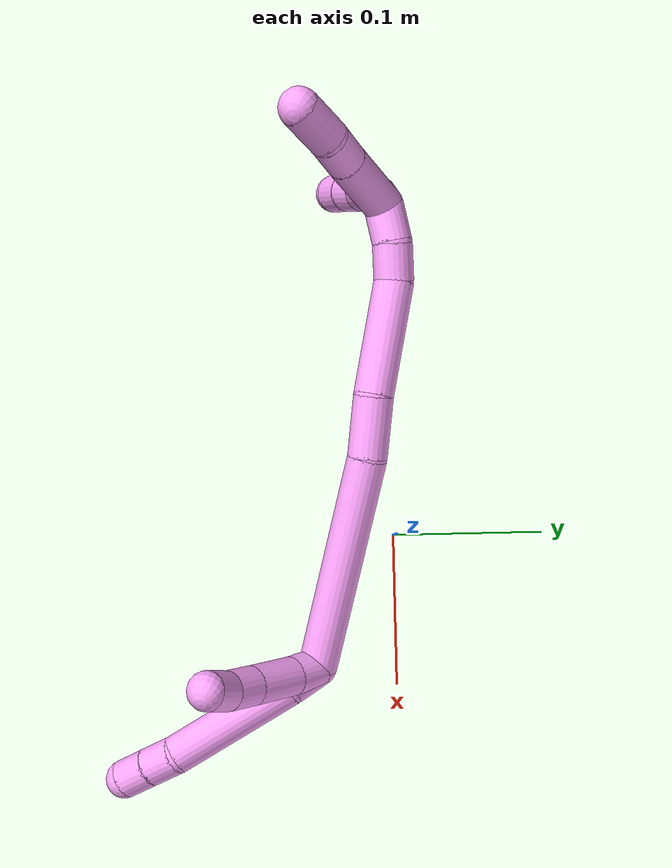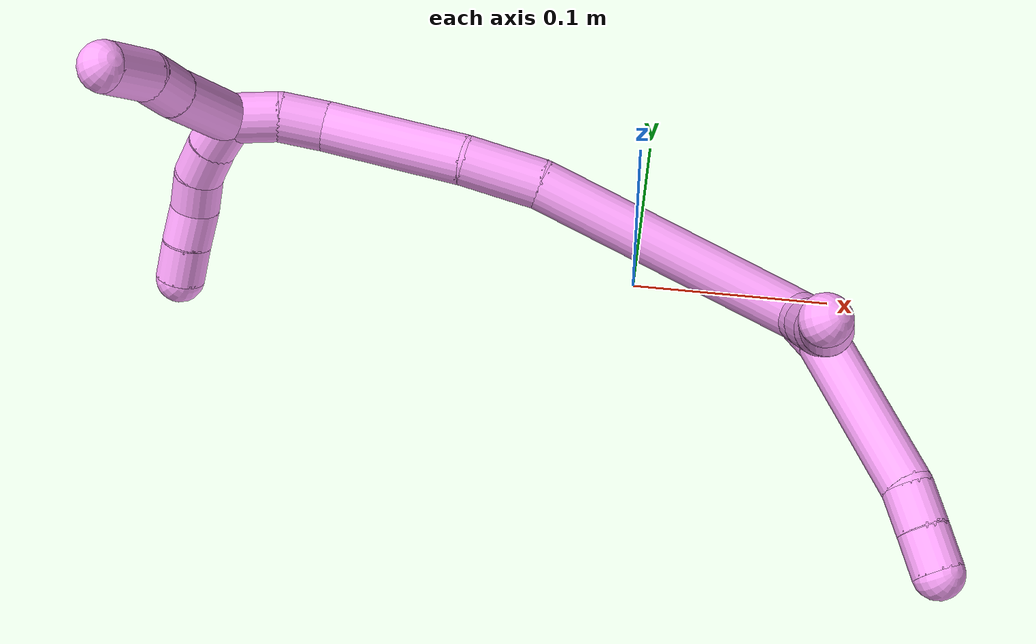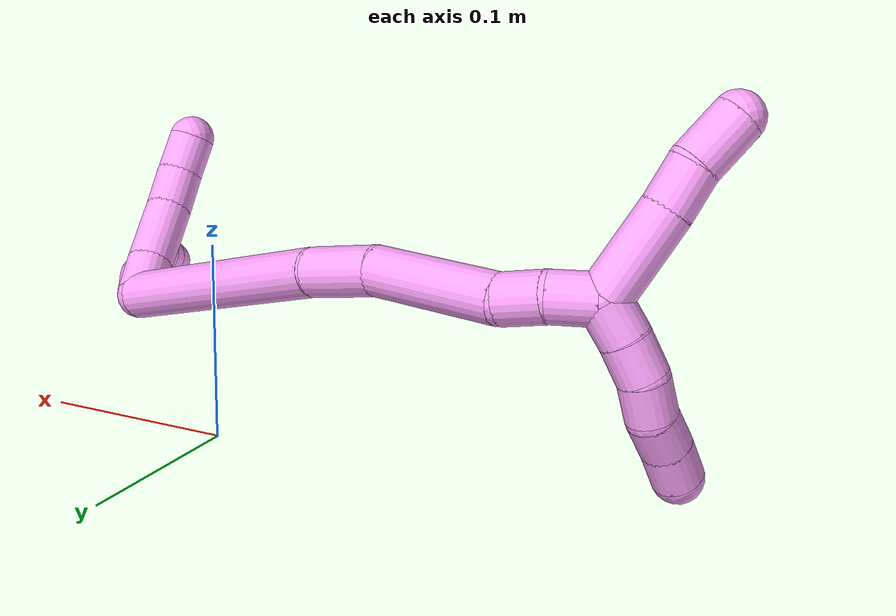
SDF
<sdf version="1.7">
 <world name="default">
  <model name="4">
   <static>0</static>
   <link name="4">
    <collision name="collision-cylinder-e_1_2_8">
     <pose>-0.000594 -0.007827 0.007557 0.802934 -0.054547 -0.023161</pose>
     <geometry><cylinder><radius>0.0125</radius><length>0.021793</length></cylinder></geometry>
     <surface>
      <friction><ode><mu>1.16</mu><mu2>1.16</mu2><slip1>0</slip1><slip2>0</slip2></ode></friction>
      <contact><ode><kp>1e+06</kp><kd>1</kd><max_vel>0</max_vel><min_depth>0.001</min_depth></ode></contact>
     </surface>
    </collision>
    <visual name="visual-cylinder-e_1_2_8">
     <pose>-0.000594 -0.007827 0.007557 0.802934 -0.054547 -0.023161</pose>
     <geometry><cylinder><radius>0.0125</radius><length>0.021793</length></cylinder></geometry>
     <material><ambient>1 0.65098 0.996078 1</ambient></material>
    </visual>
    <collision name="collision-cylinder-e_2_8_9">
     <pose>0.000598 -0.053937 0.034865 1.0945 0.04145 0.025259</pose>
     <geometry><cylinder><radius>0.0125</radius><length>0.086229</length></cylinder></geometry>
     <surface>
      <friction><ode><mu>1.16</mu><mu2>1.16</mu2><slip1>0</slip1><slip2>0</slip2></ode></friction>
      <contact><ode><kp>1e+06</kp><kd>1</kd><max_vel>0</max_vel><min_depth>0.001</min_depth></ode></contact>
     </surface>
    </collision>
    <visual name="visual-cylinder-e_2_8_9">
     <pose>0.000598 -0.053937 0.034865 1.0945 0.04145 0.025259</pose>
     <geometry><cylinder><radius>0.0125</radius><length>0.086229</length></cylinder></geometry>
     <material><ambient>1 0.65098 0.996078 1</ambient></material>
    </visual>
    <collision name="collision-cylinder-e_3_9_10">
     <pose>0.003231 -0.102458 0.056814 1.3593 0.080598 0.065142</pose>
     <geometry><cylinder><radius>0.0125</radius><length>0.02101</length></cylinder></geometry>
     <surface>
      <friction><ode><mu>1.16</mu><mu2>1.16</mu2><slip1>0</slip1><slip2>0</slip2></ode></friction>
      <contact><ode><kp>1e+06</kp><kd>1</kd><max_vel>0</max_vel><min_depth>0.001</min_depth></ode></contact>
     </surface>
    </collision>
    <visual name="visual-cylinder-e_3_9_10">
     <pose>0.003231 -0.102458 0.056814 1.3593 0.080598 0.065142</pose>
     <geometry><cylinder><radius>0.0125</radius><length>0.02101</length></cylinder></geometry>
     <material><ambient>1 0.65098 0.996078 1</ambient></material>
    </visual>
    <collision name="collision-cylinder-e_4_10_6">
     <pose>0.005185 -0.122968 0.06079 1.39942 0.105919 0.089187</pose>
     <geometry><cylinder><radius>0.0125</radius><length>0.020968</length></cylinder></geometry>
     <surface>
      <friction><ode><mu>1.16</mu><mu2>1.16</mu2><slip1>0</slip1><slip2>0</slip2></ode></friction>
      <contact><ode><kp>1e+06</kp><kd>1</kd><max_vel>0</max_vel><min_depth>0.001</min_depth></ode></contact>
     </surface>
    </collision>
    <visual name="visual-cylinder-e_4_10_6">
     <pose>0.005185 -0.122968 0.06079 1.39942 0.105919 0.089187</pose>
     <geometry><cylinder><radius>0.0125</radius><length>0.020968</length></cylinder></geometry>
     <material><ambient>1 0.65098 0.996078 1</ambient></material>
    </visual>
    <collision name="collision-cylinder-e_1_2_11">
     <pose>-0.005018 -0.00376 0.008843 0.401977 -0.48124 -0.099902</pose>
     <geometry><cylinder><radius>0.0125</radius><length>0.021681</length></cylinder></geometry>
     <surface>
      <friction><ode><mu>1.16</mu><mu2>1.16</mu2><slip1>0</slip1><slip2>0</slip2></ode></friction>
      <contact><ode><kp>1e+06</kp><kd>1</kd><max_vel>0</max_vel><min_depth>0.001</min_depth></ode></contact>
     </surface>
    </collision>
    <visual name="visual-cylinder-e_1_2_11">
     <pose>-0.005018 -0.00376 0.008843 0.401977 -0.48124 -0.099902</pose>
     <geometry><cylinder><radius>0.0125</radius><length>0.021681</length></cylinder></geometry>
     <material><ambient>1 0.65098 0.996078 1</ambient></material>
    </visual>
    <collision name="collision-cylinder-e_2_11_12">
     <pose>-0.01955 -0.011994 0.031384 0.315792 -0.583572 -0.095574</pose>
     <geometry><cylinder><radius>0.0125</radius><length>0.034535</length></cylinder></geometry>
     <surface>
      <friction><ode><mu>1.16</mu><mu2>1.16</mu2><slip1>0</slip1><slip2>0</slip2></ode></friction>
      <contact><ode><kp>1e+06</kp><kd>1</kd><max_vel>0</max_vel><min_depth>0.001</min_depth></ode></contact>
     </surface>
    </collision>
    <visual name="visual-cylinder-e_2_11_12">
     <pose>-0.01955 -0.011994 0.031384 0.315792 -0.583572 -0.095574</pose>
     <geometry><cylinder><radius>0.0125</radius><length>0.034535</length></cylinder></geometry>
     <material><ambient>1 0.65098 0.996078 1</ambient></material>
    </visual>
    <collision name="collision-cylinder-e_3_12_13">
     <pose>-0.035538 -0.018376 0.054152 0.207184 -0.609575 -0.065389</pose>
     <geometry><cylinder><radius>0.0125</radius><length>0.022612</length></cylinder></geometry>
     <surface>
      <friction><ode><mu>1.16</mu><mu2>1.16</mu2><slip1>0</slip1><slip2>0</slip2></ode></friction>
      <contact><ode><kp>1e+06</kp><kd>1</kd><max_vel>0</max_vel><min_depth>0.001</min_depth></ode></contact>
     </surface>
    </collision>
    <visual name="visual-cylinder-e_3_12_13">
     <pose>-0.035538 -0.018376 0.054152 0.207184 -0.609575 -0.065389</pose>
     <geometry><cylinder><radius>0.0125</radius><length>0.022612</length></cylinder></geometry>
     <material><ambient>1 0.65098 0.996078 1</ambient></material>
    </visual>
    <collision name="collision-cylinder-e_4_13_5">
     <pose>-0.04915 -0.019944 0.071032 -0.04341 -0.74024 0.016846</pose>
     <geometry><cylinder><radius>0.0125</radius><length>0.021172</length></cylinder></geometry>
     <surface>
      <friction><ode><mu>1.16</mu><mu2>1.16</mu2><slip1>0</slip1><slip2>0</slip2></ode></friction>
      <contact><ode><kp>1e+06</kp><kd>1</kd><max_vel>0</max_vel><min_depth>0.001</min_depth></ode></contact>
     </surface>
    </collision>
    <visual name="visual-cylinder-e_4_13_5">
     <pose>-0.04915 -0.019944 0.071032 -0.04341 -0.74024 0.016846</pose>
     <geometry><cylinder><radius>0.0125</radius><length>0.021172</length></cylinder></geometry>
     <material><ambient>1 0.65098 0.996078 1</ambient></material>
    </visual>
    <collision name="collision-cylinder-e_1_2_14">
     <pose>-0.051424 0.0384 -0.029172 -2.22047 -0.817494 1.4354</pose>
     <geometry><cylinder><radius>0.0125</radius><length>0.140996</length></cylinder></geometry>
     <surface>
      <friction><ode><mu>1.16</mu><mu2>1.16</mu2><slip1>0</slip1><slip2>0</slip2></ode></friction>
      <contact><ode><kp>1e+06</kp><kd>1</kd><max_vel>0</max_vel><min_depth>0.001</min_depth></ode></contact>
     </surface>
    </collision>
    <visual name="visual-cylinder-e_1_2_14">
     <pose>-0.051424 0.0384 -0.029172 -2.22047 -0.817494 1.4354</pose>
     <geometry><cylinder><radius>0.0125</radius><length>0.140996</length></cylinder></geometry>
     <material><ambient>1 0.65098 0.996078 1</ambient></material>
    </visual>
    <collision name="collision-cylinder-e_2_14_15">
     <pose>-0.118044 0.084646 -0.06771 -2.4443 -0.893654 1.84359</pose>
     <geometry><cylinder><radius>0.0125</radius><length>0.038999</length></cylinder></geometry>
     <surface>
      <friction><ode><mu>1.16</mu><mu2>1.16</mu2><slip1>0</slip1><slip2>0</slip2></ode></friction>
      <contact><ode><kp>1e+06</kp><kd>1</kd><max_vel>0</max_vel><min_depth>0.001</min_depth></ode></contact>
     </surface>
    </collision>
    <visual name="visual-cylinder-e_2_14_15">
     <pose>-0.118044 0.084646 -0.06771 -2.4443 -0.893654 1.84359</pose>
     <geometry><cylinder><radius>0.0125</radius><length>0.038999</length></cylinder></geometry>
     <material><ambient>1 0.65098 0.996078 1</ambient></material>
    </visual>
    <collision name="collision-cylinder-e_3_15_16">
     <pose>-0.15729 0.106206 -0.100304 -2.60823 -0.728107 1.89755</pose>
     <geometry><cylinder><radius>0.0125</radius><length>0.072276</length></cylinder></geometry>
     <surface>
      <friction><ode><mu>1.16</mu><mu2>1.16</mu2><slip1>0</slip1><slip2>0</slip2></ode></friction>
      <contact><ode><kp>1e+06</kp><kd>1</kd><max_vel>0</max_vel><min_depth>0.001</min_depth></ode></contact>
     </surface>
    </collision>
    <visual name="visual-cylinder-e_3_15_16">
     <pose>-0.15729 0.106206 -0.100304 -2.60823 -0.728107 1.89755</pose>
     <geometry><cylinder><radius>0.0125</radius><length>0.072276</length></cylinder></geometry>
     <material><ambient>1 0.65098 0.996078 1</ambient></material>
    </visual>
    <collision name="collision-cylinder-e_4_16_17">
     <pose>-0.191344 0.123272 -0.128677 -2.56435 -1.02033 2.16594</pose>
     <geometry><cylinder><radius>0.0125</radius><length>0.023479</length></cylinder></geometry>
     <surface>
      <friction><ode><mu>1.16</mu><mu2>1.16</mu2><slip1>0</slip1><slip2>0</slip2></ode></friction>
      <contact><ode><kp>1e+06</kp><kd>1</kd><max_vel>0</max_vel><min_depth>0.001</min_depth></ode></contact>
     </surface>
    </collision>
    <visual name="visual-cylinder-e_4_16_17">
     <pose>-0.191344 0.123272 -0.128677 -2.56435 -1.02033 2.16594</pose>
     <geometry><cylinder><radius>0.0125</radius><length>0.023479</length></cylinder></geometry>
     <material><ambient>1 0.65098 0.996078 1</ambient></material>
    </visual>
    <collision name="collision-cylinder-e_5_17_1">
     <pose>-0.211802 0.127331 -0.139927 -3.02613 -1.03937 2.94025</pose>
     <geometry><cylinder><radius>0.0125</radius><length>0.02425</length></cylinder></geometry>
     <surface>
      <friction><ode><mu>1.16</mu><mu2>1.16</mu2><slip1>0</slip1><slip2>0</slip2></ode></friction>
      <contact><ode><kp>1e+06</kp><kd>1</kd><max_vel>0</max_vel><min_depth>0.001</min_depth></ode></contact>
     </surface>
    </collision>
    <visual name="visual-cylinder-e_5_17_1">
     <pose>-0.211802 0.127331 -0.139927 -3.02613 -1.03937 2.94025</pose>
     <geometry><cylinder><radius>0.0125</radius><length>0.02425</length></cylinder></geometry>
     <material><ambient>1 0.65098 0.996078 1</ambient></material>
    </visual>
    <collision name="collision-cylinder-e_1_1_18">
     <pose>-0.242953 0.129641 -0.134502 -0.138127 -1.05853 0.080879</pose>
     <geometry><cylinder><radius>0.0125</radius><length>0.047493</length></cylinder></geometry>
     <surface>
      <friction><ode><mu>1.16</mu><mu2>1.16</mu2><slip1>0</slip1><slip2>0</slip2></ode></friction>
      <contact><ode><kp>1e+06</kp><kd>1</kd><max_vel>0</max_vel><min_depth>0.001</min_depth></ode></contact>
     </surface>
    </collision>
    <visual name="visual-cylinder-e_1_1_18">
     <pose>-0.242953 0.129641 -0.134502 -0.138127 -1.05853 0.080879</pose>
     <geometry><cylinder><radius>0.0125</radius><length>0.047493</length></cylinder></geometry>
     <material><ambient>1 0.65098 0.996078 1</ambient></material>
    </visual>
    <collision name="collision-cylinder-e_2_18_19">
     <pose>-0.27346 0.132797 -0.116742 -0.244289 -0.991141 0.13252</pose>
     <geometry><cylinder><radius>0.0125</radius><length>0.023448</length></cylinder></geometry>
     <surface>
      <friction><ode><mu>1.16</mu><mu2>1.16</mu2><slip1>0</slip1><slip2>0</slip2></ode></friction>
      <contact><ode><kp>1e+06</kp><kd>1</kd><max_vel>0</max_vel><min_depth>0.001</min_depth></ode></contact>
     </surface>
    </collision>
    <visual name="visual-cylinder-e_2_18_19">
     <pose>-0.27346 0.132797 -0.116742 -0.244289 -0.991141 0.13252</pose>
     <geometry><cylinder><radius>0.0125</radius><length>0.023448</length></cylinder></geometry>
     <material><ambient>1 0.65098 0.996078 1</ambient></material>
    </visual>
    <collision name="collision-cylinder-e_3_19_4">
     <pose>-0.296617 0.133709 -0.104807 0.112051 -1.16468 -0.073831</pose>
     <geometry><cylinder><radius>0.0125</radius><length>0.029059</length></cylinder></geometry>
     <surface>
      <friction><ode><mu>1.16</mu><mu2>1.16</mu2><slip1>0</slip1><slip2>0</slip2></ode></friction>
      <contact><ode><kp>1e+06</kp><kd>1</kd><max_vel>0</max_vel><min_depth>0.001</min_depth></ode></contact>
     </surface>
    </collision>
    <visual name="visual-cylinder-e_3_19_4">
     <pose>-0.296617 0.133709 -0.104807 0.112051 -1.16468 -0.073831</pose>
     <geometry><cylinder><radius>0.0125</radius><length>0.029059</length></cylinder></geometry>
     <material><ambient>1 0.65098 0.996078 1</ambient></material>
    </visual>
    <collision name="collision-cylinder-e_1_1_20">
     <pose>-0.222948 0.12351 -0.154919 2.67038 -0.069386 -0.287152</pose>
     <geometry><cylinder><radius>0.0125</radius><length>0.02</length></cylinder></geometry>
     <surface>
      <friction><ode><mu>1.16</mu><mu2>1.16</mu2><slip1>0</slip1><slip2>0</slip2></ode></friction>
      <contact><ode><kp>1e+06</kp><kd>1</kd><max_vel>0</max_vel><min_depth>0.001</min_depth></ode></contact>
     </surface>
    </collision>
    <visual name="visual-cylinder-e_1_1_20">
     <pose>-0.222948 0.12351 -0.154919 2.67038 -0.069386 -0.287152</pose>
     <geometry><cylinder><radius>0.0125</radius><length>0.02</length></cylinder></geometry>
     <material><ambient>1 0.65098 0.996078 1</ambient></material>
    </visual>
    <collision name="collision-cylinder-e_2_20_21">
     <pose>-0.223554 0.11388 -0.172408 2.60623 0.008727 0.031818</pose>
     <geometry><cylinder><radius>0.0125</radius><length>0.02</length></cylinder></geometry>
     <surface>
      <friction><ode><mu>1.16</mu><mu2>1.16</mu2><slip1>0</slip1><slip2>0</slip2></ode></friction>
      <contact><ode><kp>1e+06</kp><kd>1</kd><max_vel>0</max_vel><min_depth>0.001</min_depth></ode></contact>
     </surface>
    </collision>
    <visual name="visual-cylinder-e_2_20_21">
     <pose>-0.223554 0.11388 -0.172408 2.60623 0.008727 0.031818</pose>
     <geometry><cylinder><radius>0.0125</radius><length>0.02</length></cylinder></geometry>
     <material><ambient>1 0.65098 0.996078 1</ambient></material>
    </visual>
    <collision name="collision-cylinder-e_3_21_22">
     <pose>-0.221468 0.102368 -0.188419 2.42841 0.201273 0.529418</pose>
     <geometry><cylinder><radius>0.0125</radius><length>0.02</length></cylinder></geometry>
     <surface>
      <friction><ode><mu>1.16</mu><mu2>1.16</mu2><slip1>0</slip1><slip2>0</slip2></ode></friction>
      <contact><ode><kp>1e+06</kp><kd>1</kd><max_vel>0</max_vel><min_depth>0.001</min_depth></ode></contact>
     </surface>
    </collision>
    <visual name="visual-cylinder-e_3_21_22">
     <pose>-0.221468 0.102368 -0.188419 2.42841 0.201273 0.529418</pose>
     <geometry><cylinder><radius>0.0125</radius><length>0.02</length></cylinder></geometry>
     <material><ambient>1 0.65098 0.996078 1</ambient></material>
    </visual>
    <collision name="collision-cylinder-e_4_22_23">
     <pose>-0.219511 0.088053 -0.201954 2.23001 -0.004255 -0.00868</pose>
     <geometry><cylinder><radius>0.0125</radius><length>0.02</length></cylinder></geometry>
     <surface>
      <friction><ode><mu>1.16</mu><mu2>1.16</mu2><slip1>0</slip1><slip2>0</slip2></ode></friction>
      <contact><ode><kp>1e+06</kp><kd>1</kd><max_vel>0</max_vel><min_depth>0.001</min_depth></ode></contact>
     </surface>
    </collision>
    <visual name="visual-cylinder-e_4_22_23">
     <pose>-0.219511 0.088053 -0.201954 2.23001 -0.004255 -0.00868</pose>
     <geometry><cylinder><radius>0.0125</radius><length>0.02</length></cylinder></geometry>
     <material><ambient>1 0.65098 0.996078 1</ambient></material>
    </visual>
    <collision name="collision-cylinder-e_5_23_3">
     <pose>-0.218938 0.072465 -0.214449 2.26301 0.06164 0.131026</pose>
     <geometry><cylinder><radius>0.0125</radius><length>0.02</length></cylinder></geometry>
     <surface>
      <friction><ode><mu>1.16</mu><mu2>1.16</mu2><slip1>0</slip1><slip2>0</slip2></ode></friction>
      <contact><ode><kp>1e+06</kp><kd>1</kd><max_vel>0</max_vel><min_depth>0.001</min_depth></ode></contact>
     </surface>
    </collision>
    <visual name="visual-cylinder-e_5_23_3">
     <pose>-0.218938 0.072465 -0.214449 2.26301 0.06164 0.131026</pose>
     <geometry><cylinder><radius>0.0125</radius><length>0.02</length></cylinder></geometry>
     <material><ambient>1 0.65098 0.996078 1</ambient></material>
    </visual>
    <collision name="collision-sphere-3">
     <pose>-0.218322 0.064781 -0.22082 0 -0 0</pose>
     <geometry><sphere><radius>0.0125</radius></sphere></geometry>
     <surface>
      <friction><ode><mu>1.16</mu><mu2>1.16</mu2><slip1>0</slip1><slip2>0</slip2></ode></friction>
      <contact><ode><kp>1e+06</kp><kd>1</kd><max_vel>0</max_vel><min_depth>0.001</min_depth></ode></contact>
     </surface>
    </collision>
    <visual name="visual-sphere-3">
     <pose>-0.218322 0.064781 -0.22082 0 -0 0</pose>
     <geometry><sphere><radius>0.0125</radius></sphere></geometry>
     <material><ambient>1 0.65098 0.996078 1</ambient></material>
    </visual>
    <collision name="collision-sphere-23">
     <pose>-0.219554 0.080149 -0.208079 0 -0 0</pose>
     <geometry><sphere><radius>0.0125</radius></sphere></geometry>
     <surface>
      <friction><ode><mu>1.16</mu><mu2>1.16</mu2><slip1>0</slip1><slip2>0</slip2></ode></friction>
      <contact><ode><kp>1e+06</kp><kd>1</kd><max_vel>0</max_vel><min_depth>0.001</min_depth></ode></contact>
     </surface>
    </collision>
    <visual name="visual-sphere-23">
     <pose>-0.219554 0.080149 -0.208079 0 -0 0</pose>
     <geometry><sphere><radius>0.0125</radius></sphere></geometry>
     <material><ambient>1 0.65098 0.996078 1</ambient></material>
    </visual>
    <collision name="collision-sphere-22">
     <pose>-0.219469 0.095958 -0.195829 0 -0 0</pose>
     <geometry><sphere><radius>0.0125</radius></sphere></geometry>
     <surface>
      <friction><ode><mu>1.16</mu><mu2>1.16</mu2><slip1>0</slip1><slip2>0</slip2></ode></friction>
      <contact><ode><kp>1e+06</kp><kd>1</kd><max_vel>0</max_vel><min_depth>0.001</min_depth></ode></contact>
     </surface>
    </collision>
    <visual name="visual-sphere-22">
     <pose>-0.219469 0.095958 -0.195829 0 -0 0</pose>
     <geometry><sphere><radius>0.0125</radius></sphere></geometry>
     <material><ambient>1 0.65098 0.996078 1</ambient></material>
    </visual>
    <collision name="collision-sphere-21">
     <pose>-0.223467 0.108779 -0.181009 0 -0 0</pose>
     <geometry><sphere><radius>0.0125</radius></sphere></geometry>
     <surface>
      <friction><ode><mu>1.16</mu><mu2>1.16</mu2><slip1>0</slip1><slip2>0</slip2></ode></friction>
      <contact><ode><kp>1e+06</kp><kd>1</kd><max_vel>0</max_vel><min_depth>0.001</min_depth></ode></contact>
     </surface>
    </collision>
    <visual name="visual-sphere-21">
     <pose>-0.223467 0.108779 -0.181009 0 -0 0</pose>
     <geometry><sphere><radius>0.0125</radius></sphere></geometry>
     <material><ambient>1 0.65098 0.996078 1</ambient></material>
    </visual>
    <collision name="collision-sphere-20">
     <pose>-0.223641 0.118981 -0.163808 0 -0 0</pose>
     <geometry><sphere><radius>0.0125</radius></sphere></geometry>
     <surface>
      <friction><ode><mu>1.16</mu><mu2>1.16</mu2><slip1>0</slip1><slip2>0</slip2></ode></friction>
      <contact><ode><kp>1e+06</kp><kd>1</kd><max_vel>0</max_vel><min_depth>0.001</min_depth></ode></contact>
     </surface>
    </collision>
    <visual name="visual-sphere-20">
     <pose>-0.223641 0.118981 -0.163808 0 -0 0</pose>
     <geometry><sphere><radius>0.0125</radius></sphere></geometry>
     <material><ambient>1 0.65098 0.996078 1</ambient></material>
    </visual>
    <collision name="collision-sphere-4">
     <pose>-0.309965 0.133067 -0.099104 0 -0 0</pose>
     <geometry><sphere><radius>0.0125</radius></sphere></geometry>
     <surface>
      <friction><ode><mu>1.16</mu><mu2>1.16</mu2><slip1>0</slip1><slip2>0</slip2></ode></friction>
      <contact><ode><kp>1e+06</kp><kd>1</kd><max_vel>0</max_vel><min_depth>0.001</min_depth></ode></contact>
     </surface>
    </collision>
    <visual name="visual-sphere-4">
     <pose>-0.309965 0.133067 -0.099104 0 -0 0</pose>
     <geometry><sphere><radius>0.0125</radius></sphere></geometry>
     <material><ambient>1 0.65098 0.996078 1</ambient></material>
    </visual>
    <collision name="collision-sphere-11">
     <pose>-0.010036 -0.007519 0.017687 0 -0 0</pose>
     <geometry><sphere><radius>0.0125</radius></sphere></geometry>
     <surface>
      <friction><ode><mu>1.16</mu><mu2>1.16</mu2><slip1>0</slip1><slip2>0</slip2></ode></friction>
      <contact><ode><kp>1e+06</kp><kd>1</kd><max_vel>0</max_vel><min_depth>0.001</min_depth></ode></contact>
     </surface>
    </collision>
    <visual name="visual-sphere-11">
     <pose>-0.010036 -0.007519 0.017687 0 -0 0</pose>
     <geometry><sphere><radius>0.0125</radius></sphere></geometry>
     <material><ambient>1 0.65098 0.996078 1</ambient></material>
    </visual>
    <collision name="collision-sphere-6">
     <pose>0.006293 -0.133241 0.062568 0 -0 0</pose>
     <geometry><sphere><radius>0.0125</radius></sphere></geometry>
     <surface>
      <friction><ode><mu>1.16</mu><mu2>1.16</mu2><slip1>0</slip1><slip2>0</slip2></ode></friction>
      <contact><ode><kp>1e+06</kp><kd>1</kd><max_vel>0</max_vel><min_depth>0.001</min_depth></ode></contact>
     </surface>
    </collision>
    <visual name="visual-sphere-6">
     <pose>0.006293 -0.133241 0.062568 0 -0 0</pose>
     <geometry><sphere><radius>0.0125</radius></sphere></geometry>
     <material><ambient>1 0.65098 0.996078 1</ambient></material>
    </visual>
    <collision name="collision-sphere-10">
     <pose>0.004077 -0.112695 0.059012 0 -0 0</pose>
     <geometry><sphere><radius>0.0125</radius></sphere></geometry>
     <surface>
      <friction><ode><mu>1.16</mu><mu2>1.16</mu2><slip1>0</slip1><slip2>0</slip2></ode></friction>
      <contact><ode><kp>1e+06</kp><kd>1</kd><max_vel>0</max_vel><min_depth>0.001</min_depth></ode></contact>
     </surface>
    </collision>
    <visual name="visual-sphere-10">
     <pose>0.004077 -0.112695 0.059012 0 -0 0</pose>
     <geometry><sphere><radius>0.0125</radius></sphere></geometry>
     <material><ambient>1 0.65098 0.996078 1</ambient></material>
    </visual>
    <collision name="collision-sphere-9">
     <pose>0.002385 -0.09222 0.054616 0 -0 0</pose>
     <geometry><sphere><radius>0.0125</radius></sphere></geometry>
     <surface>
      <friction><ode><mu>1.16</mu><mu2>1.16</mu2><slip1>0</slip1><slip2>0</slip2></ode></friction>
      <contact><ode><kp>1e+06</kp><kd>1</kd><max_vel>0</max_vel><min_depth>0.001</min_depth></ode></contact>
     </surface>
    </collision>
    <visual name="visual-sphere-9">
     <pose>0.002385 -0.09222 0.054616 0 -0 0</pose>
     <geometry><sphere><radius>0.0125</radius></sphere></geometry>
     <material><ambient>1 0.65098 0.996078 1</ambient></material>
    </visual>
    <collision name="collision-sphere-2">
     <geometry><sphere><radius>0.0125</radius></sphere></geometry>
     <surface>
      <friction><ode><mu>1.16</mu><mu2>1.16</mu2><slip1>0</slip1><slip2>0</slip2></ode></friction>
      <contact><ode><kp>1e+06</kp><kd>1</kd><max_vel>0</max_vel><min_depth>0.001</min_depth></ode></contact>
     </surface>
    </collision>
    <visual name="visual-sphere-2">
     <geometry><sphere><radius>0.0125</radius></sphere></geometry>
     <material><ambient>1 0.65098 0.996078 1</ambient></material>
    </visual>
    <collision name="collision-sphere-19">
     <pose>-0.283269 0.13435 -0.110511 0 -0 0</pose>
     <geometry><sphere><radius>0.0125</radius></sphere></geometry>
     <surface>
      <friction><ode><mu>1.16</mu><mu2>1.16</mu2><slip1>0</slip1><slip2>0</slip2></ode></friction>
      <contact><ode><kp>1e+06</kp><kd>1</kd><max_vel>0</max_vel><min_depth>0.001</min_depth></ode></contact>
     </surface>
    </collision>
    <visual name="visual-sphere-19">
     <pose>-0.283269 0.13435 -0.110511 0 -0 0</pose>
     <geometry><sphere><radius>0.0125</radius></sphere></geometry>
     <material><ambient>1 0.65098 0.996078 1</ambient></material>
    </visual>
    <collision name="collision-sphere-8">
     <pose>-0.001188 -0.015654 0.015115 0 -0 0</pose>
     <geometry><sphere><radius>0.0125</radius></sphere></geometry>
     <surface>
      <friction><ode><mu>1.16</mu><mu2>1.16</mu2><slip1>0</slip1><slip2>0</slip2></ode></friction>
      <contact><ode><kp>1e+06</kp><kd>1</kd><max_vel>0</max_vel><min_depth>0.001</min_depth></ode></contact>
     </surface>
    </collision>
    <visual name="visual-sphere-8">
     <pose>-0.001188 -0.015654 0.015115 0 -0 0</pose>
     <geometry><sphere><radius>0.0125</radius></sphere></geometry>
     <material><ambient>1 0.65098 0.996078 1</ambient></material>
    </visual>
    <collision name="collision-sphere-12">
     <pose>-0.029065 -0.01647 0.045081 0 -0 0</pose>
     <geometry><sphere><radius>0.0125</radius></sphere></geometry>
     <surface>
      <friction><ode><mu>1.16</mu><mu2>1.16</mu2><slip1>0</slip1><slip2>0</slip2></ode></friction>
      <contact><ode><kp>1e+06</kp><kd>1</kd><max_vel>0</max_vel><min_depth>0.001</min_depth></ode></contact>
     </surface>
    </collision>
    <visual name="visual-sphere-12">
     <pose>-0.029065 -0.01647 0.045081 0 -0 0</pose>
     <geometry><sphere><radius>0.0125</radius></sphere></geometry>
     <material><ambient>1 0.65098 0.996078 1</ambient></material>
    </visual>
    <collision name="collision-sphere-13">
     <pose>-0.04201 -0.020283 0.063224 0 -0 0</pose>
     <geometry><sphere><radius>0.0125</radius></sphere></geometry>
     <surface>
      <friction><ode><mu>1.16</mu><mu2>1.16</mu2><slip1>0</slip1><slip2>0</slip2></ode></friction>
      <contact><ode><kp>1e+06</kp><kd>1</kd><max_vel>0</max_vel><min_depth>0.001</min_depth></ode></contact>
     </surface>
    </collision>
    <visual name="visual-sphere-13">
     <pose>-0.04201 -0.020283 0.063224 0 -0 0</pose>
     <geometry><sphere><radius>0.0125</radius></sphere></geometry>
     <material><ambient>1 0.65098 0.996078 1</ambient></material>
    </visual>
    <collision name="collision-sphere-5">
     <pose>-0.05629 -0.019605 0.078841 0 -0 0</pose>
     <geometry><sphere><radius>0.0125</radius></sphere></geometry>
     <surface>
      <friction><ode><mu>1.16</mu><mu2>1.16</mu2><slip1>0</slip1><slip2>0</slip2></ode></friction>
      <contact><ode><kp>1e+06</kp><kd>1</kd><max_vel>0</max_vel><min_depth>0.001</min_depth></ode></contact>
     </surface>
    </collision>
    <visual name="visual-sphere-5">
     <pose>-0.05629 -0.019605 0.078841 0 -0 0</pose>
     <geometry><sphere><radius>0.0125</radius></sphere></geometry>
     <material><ambient>1 0.65098 0.996078 1</ambient></material>
    </visual>
    <collision name="collision-sphere-14">
     <pose>-0.102847 0.0768 -0.058344 0 -0 0</pose>
     <geometry><sphere><radius>0.0125</radius></sphere></geometry>
     <surface>
      <friction><ode><mu>1.16</mu><mu2>1.16</mu2><slip1>0</slip1><slip2>0</slip2></ode></friction>
      <contact><ode><kp>1e+06</kp><kd>1</kd><max_vel>0</max_vel><min_depth>0.001</min_depth></ode></contact>
     </surface>
    </collision>
    <visual name="visual-sphere-14">
     <pose>-0.102847 0.0768 -0.058344 0 -0 0</pose>
     <geometry><sphere><radius>0.0125</radius></sphere></geometry>
     <material><ambient>1 0.65098 0.996078 1</ambient></material>
    </visual>
    <collision name="collision-sphere-15">
     <pose>-0.133242 0.092491 -0.077076 0 -0 0</pose>
     <geometry><sphere><radius>0.0125</radius></sphere></geometry>
     <surface>
      <friction><ode><mu>1.16</mu><mu2>1.16</mu2><slip1>0</slip1><slip2>0</slip2></ode></friction>
      <contact><ode><kp>1e+06</kp><kd>1</kd><max_vel>0</max_vel><min_depth>0.001</min_depth></ode></contact>
     </surface>
    </collision>
    <visual name="visual-sphere-15">
     <pose>-0.133242 0.092491 -0.077076 0 -0 0</pose>
     <geometry><sphere><radius>0.0125</radius></sphere></geometry>
     <material><ambient>1 0.65098 0.996078 1</ambient></material>
    </visual>
    <collision name="collision-sphere-16">
     <pose>-0.181338 0.119921 -0.123532 0 -0 0</pose>
     <geometry><sphere><radius>0.0125</radius></sphere></geometry>
     <surface>
      <friction><ode><mu>1.16</mu><mu2>1.16</mu2><slip1>0</slip1><slip2>0</slip2></ode></friction>
      <contact><ode><kp>1e+06</kp><kd>1</kd><max_vel>0</max_vel><min_depth>0.001</min_depth></ode></contact>
     </surface>
    </collision>
    <visual name="visual-sphere-16">
     <pose>-0.181338 0.119921 -0.123532 0 -0 0</pose>
     <geometry><sphere><radius>0.0125</radius></sphere></geometry>
     <material><ambient>1 0.65098 0.996078 1</ambient></material>
    </visual>
    <collision name="collision-sphere-17">
     <pose>-0.201349 0.126623 -0.133823 0 -0 0</pose>
     <geometry><sphere><radius>0.0125</radius></sphere></geometry>
     <surface>
      <friction><ode><mu>1.16</mu><mu2>1.16</mu2><slip1>0</slip1><slip2>0</slip2></ode></friction>
      <contact><ode><kp>1e+06</kp><kd>1</kd><max_vel>0</max_vel><min_depth>0.001</min_depth></ode></contact>
     </surface>
    </collision>
    <visual name="visual-sphere-17">
     <pose>-0.201349 0.126623 -0.133823 0 -0 0</pose>
     <geometry><sphere><radius>0.0125</radius></sphere></geometry>
     <material><ambient>1 0.65098 0.996078 1</ambient></material>
    </visual>
    <collision name="collision-sphere-1">
     <pose>-0.222255 0.128039 -0.14603 0 -0 0</pose>
     <geometry><sphere><radius>0.0125</radius></sphere></geometry>
     <surface>
      <friction><ode><mu>1.16</mu><mu2>1.16</mu2><slip1>0</slip1><slip2>0</slip2></ode></friction>
      <contact><ode><kp>1e+06</kp><kd>1</kd><max_vel>0</max_vel><min_depth>0.001</min_depth></ode></contact>
     </surface>
    </collision>
    <visual name="visual-sphere-1">
     <pose>-0.222255 0.128039 -0.14603 0 -0 0</pose>
     <geometry><sphere><radius>0.0125</radius></sphere></geometry>
     <material><ambient>1 0.65098 0.996078 1</ambient></material>
    </visual>
    <collision name="collision-sphere-18">
     <pose>-0.263652 0.131244 -0.122973 0 -0 0</pose>
     <geometry><sphere><radius>0.0125</radius></sphere></geometry>
     <surface>
      <friction><ode><mu>1.16</mu><mu2>1.16</mu2><slip1>0</slip1><slip2>0</slip2></ode></friction>
      <contact><ode><kp>1e+06</kp><kd>1</kd><max_vel>0</max_vel><min_depth>0.001</min_depth></ode></contact>
     </surface>
    </collision>
    <visual name="visual-sphere-18">
     <pose>-0.263652 0.131244 -0.122973 0 -0 0</pose>
     <geometry><sphere><radius>0.0125</radius></sphere></geometry>
     <material><ambient>1 0.65098 0.996078 1</ambient></material>
    </visual>
    <inertial>
     <pose>-0.11195 0.046199 -0.055451 0 -0 0</pose>
     <mass>0.75</mass>
     <inertia>
      <ixx>0.000261</ixx>
      <ixy>0</ixy>
      <ixz>0</ixz>
      <iyy>0.000382</iyy>
      <iyz>0</iyz>
      <izz>0.000134</izz>
     </inertia>
    </inertial>
   </link>
   <pose>0.083835 -0.052095 0.048661 0.583756 0.459317 0.534007</pose>
  </model>
 </world>
</sdf>
